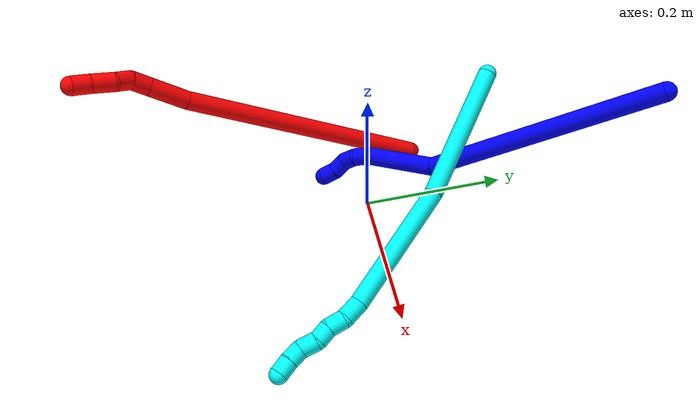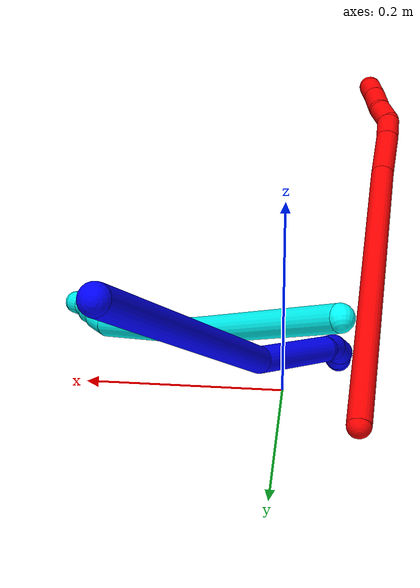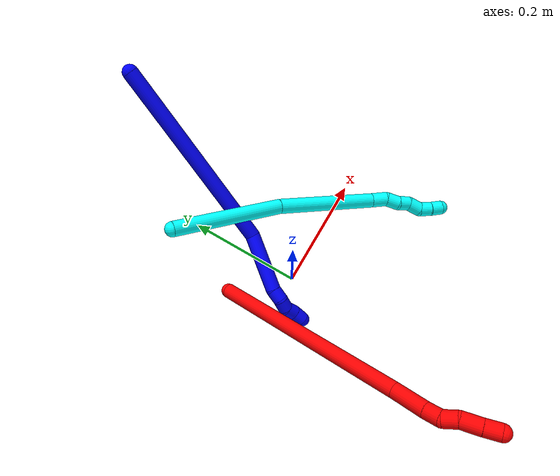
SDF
<sdf version="1.7">
 <world name="default">
  <plugin name="TubeGeneratorPlugin" filename="libtube_generator_plugin.so"/>
  <model name="photoneo_s_sensor">
   <static>1</static>
   <pose>0 0 2 1.57079 1.57079 3.14159</pose>
   <link name="link">
    <inertial><mass>0.1</mass></inertial>
    <sensor name="sensor" type="depth">
     <update_rate>30</update_rate>
     <camera>
      <horizontal_fov>1.22</horizontal_fov>
      <image><width>1920</width><height>1200</height><format>B8G8R8</format></image>
      <clip><near>0.1</near><far>4</far></clip>
      <depth_camera><output>points</output></depth_camera>
     </camera>
     <plugin name="camera_plugin" filename="libgazebo_ros_depth_camera.so">
      <baseline>0.2</baseline>
      <alwaysOn>1</alwaysOn>
      <updateRate>0.0</updateRate>
      <cameraName>camera_ir</cameraName>
      <imageTopicName>/camera/color/image_raw</imageTopicName>
      <cameraInfoTopicName>/camera/color/camera_info</cameraInfoTopicName>
      <depthImageTopicName>/camera/depth/image_raw</depthImageTopicName>
      <depthImageCameraInfoTopicName>/camera/depth/camera_info</depthImageCameraInfoTopicName>
      <pointCloudTopicName>/camera/depth/points</pointCloudTopicName>
      <frameName>fr_optical</frameName>
      <pointCloudCutoff>0.1</pointCloudCutoff>
      <pointCloudCutoffMax>2.0</pointCloudCutoffMax>
      <distortionK1>0</distortionK1>
      <distortionK2>0</distortionK2>
      <distortionK3>0</distortionK3>
      <distortionT1>0</distortionT1>
      <distortionT2>0</distortionT2>
      <CxPrime>0</CxPrime>
      <Cx>0</Cx>
      <Cy>0</Cy>
      <focalLength>0</focalLength>
      <hackBaseline>0</hackBaseline>
     </plugin>
    </sensor>
   </link>
  </model>
  <gravity>0 0 -9.8</gravity>
  <magnetic_field>6e-06 2.3e-05 -4.2e-05</magnetic_field>
  <atmosphere type="adiabatic"/>
  <physics name="default_physics" default="0" type="ode">
   <max_step_size>0.003</max_step_size>
   <real_time_factor>1</real_time_factor>
   <real_time_update_rate>1000</real_time_update_rate>
   <max_contacts>10000</max_contacts>
   <ode>
    <solver>
     <type>quick</type>
     <iters>100</iters>
     <sor>1.3</sor>
     <use_dynamic_moi_rescaling>0</use_dynamic_moi_rescaling>
    </solver>
    <constraints>
     <contact_max_correcting_vel>0</contact_max_correcting_vel>
     <contact_surface_layer>0.001</contact_surface_layer>
     <cfm>0</cfm>
     <erp>0.2</erp>
    </constraints>
   </ode>
  </physics>
  <scene><ambient>0.4 0.4 0.4 1</ambient><background>0.7 0.7 0.7 1</background><shadows>0</shadows></scene>
  <audio><device>default</device></audio>
  <spherical_coordinates>
   <surface_model>EARTH_WGS84</surface_model>
   <latitude_deg>0</latitude_deg>
   <longitude_deg>0</longitude_deg>
   <elevation>0</elevation>
   <heading_deg>0</heading_deg>
  </spherical_coordinates>
  <model name="bin">
   <static>1</static>
   <link name="bottom">
    <collision name="collision-bottom">
     <pose>0 0 -0.01 0 -0 0</pose>
     <geometry><box><size>0.8 0.6 0.02</size></box></geometry>
     <surface>
      <friction><ode><mu>100</mu><mu2>100</mu2></ode></friction>
      <contact><collide_bitmask>65535</collide_bitmask></contact>
     </surface>
    </collision>
   </link>
   <link name="west_wall">
    <collision name="collision-west_wall">
     <pose>-0.41 0 0.1 0 -0 0</pose>
     <geometry><box><size>0.02 0.6 0.2</size></box></geometry>
     <surface>
      <friction><ode><mu>100</mu><mu2>100</mu2></ode></friction>
      <contact><collide_bitmask>65535</collide_bitmask></contact>
     </surface>
    </collision>
   </link>
   <link name="east_wall">
    <collision name="collision-east_wall">
     <pose>0.41 0 0.1 0 -0 0</pose>
     <geometry><box><size>0.02 0.6 0.2</size></box></geometry>
     <surface>
      <friction><ode><mu>100</mu><mu2>100</mu2></ode></friction>
      <contact><collide_bitmask>65535</collide_bitmask></contact>
     </surface>
    </collision>
   </link>
   <link name="south_wall">
    <collision name="collision-south_wall">
     <pose>0 -0.31 0.1 0 -0 0</pose>
     <geometry><box><size>0.8 0.02 0.2</size></box></geometry>
     <surface>
      <friction><ode><mu>100</mu><mu2>100</mu2></ode></friction>
      <contact><collide_bitmask>65535</collide_bitmask></contact>
     </surface>
    </collision>
   </link>
   <link name="north_wall">
    <collision name="collision-north_wall">
     <pose>0 0.31 0.1 0 -0 0</pose>
     <geometry><box><size>0.8 0.02 0.2</size></box></geometry>
     <surface>
      <friction><ode><mu>100</mu><mu2>100</mu2></ode></friction>
      <contact><collide_bitmask>65535</collide_bitmask></contact>
     </surface>
    </collision>
   </link>
  </model>
  <model name="1">
   <static>0</static>
   <link name="1">
    <collision name="collision-cylinder-e_1_1_4">
     <pose>-0.039546 -0.052509 -0.146206 2.7968 -0.249267 -1.24738</pose>
     <geometry><cylinder><radius>0.0125</radius><length>0.320608</length></cylinder></geometry>
     <surface>
      <friction><ode><mu>1.16</mu><mu2>1.16</mu2><slip1>0</slip1><slip2>0</slip2></ode></friction>
      <contact><ode><kp>1e+06</kp><kd>1</kd><max_vel>0</max_vel><min_depth>0.001</min_depth></ode></contact>
     </surface>
    </collision>
    <visual name="visual-cylinder-e_1_1_4">
     <pose>-0.039546 -0.052509 -0.146206 2.7968 -0.249267 -1.24738</pose>
     <geometry><cylinder><radius>0.0125</radius><length>0.320608</length></cylinder></geometry>
     <material><ambient>0 0 1 1</ambient></material>
    </visual>
    <collision name="collision-cylinder-e_2_4_5">
     <pose>-0.076603 -0.135723 -0.330811 2.46705 0.050585 0.144033</pose>
     <geometry><cylinder><radius>0.0125</radius><length>0.098458</length></cylinder></geometry>
     <surface>
      <friction><ode><mu>1.16</mu><mu2>1.16</mu2><slip1>0</slip1><slip2>0</slip2></ode></friction>
      <contact><ode><kp>1e+06</kp><kd>1</kd><max_vel>0</max_vel><min_depth>0.001</min_depth></ode></contact>
     </surface>
    </collision>
    <visual name="visual-cylinder-e_2_4_5">
     <pose>-0.076603 -0.135723 -0.330811 2.46705 0.050585 0.144033</pose>
     <geometry><cylinder><radius>0.0125</radius><length>0.098458</length></cylinder></geometry>
     <material><ambient>0 0 1 1</ambient></material>
    </visual>
    <collision name="collision-cylinder-e_3_5_6">
     <pose>-0.07415 -0.170438 -0.378751 2.74387 -0.003566 -0.017695</pose>
     <geometry><cylinder><radius>0.0125</radius><length>0.020698</length></cylinder></geometry>
     <surface>
      <friction><ode><mu>1.16</mu><mu2>1.16</mu2><slip1>0</slip1><slip2>0</slip2></ode></friction>
      <contact><ode><kp>1e+06</kp><kd>1</kd><max_vel>0</max_vel><min_depth>0.001</min_depth></ode></contact>
     </surface>
    </collision>
    <visual name="visual-cylinder-e_3_5_6">
     <pose>-0.07415 -0.170438 -0.378751 2.74387 -0.003566 -0.017695</pose>
     <geometry><cylinder><radius>0.0125</radius><length>0.020698</length></cylinder></geometry>
     <material><ambient>0 0 1 1</ambient></material>
    </visual>
    <collision name="collision-cylinder-e_4_6_7">
     <pose>-0.077889 -0.178431 -0.396754 2.70154 -0.376826 -1.41196</pose>
     <geometry><cylinder><radius>0.0125</radius><length>0.020118</length></cylinder></geometry>
     <surface>
      <friction><ode><mu>1.16</mu><mu2>1.16</mu2><slip1>0</slip1><slip2>0</slip2></ode></friction>
      <contact><ode><kp>1e+06</kp><kd>1</kd><max_vel>0</max_vel><min_depth>0.001</min_depth></ode></contact>
     </surface>
    </collision>
    <visual name="visual-cylinder-e_4_6_7">
     <pose>-0.077889 -0.178431 -0.396754 2.70154 -0.376826 -1.41196</pose>
     <geometry><cylinder><radius>0.0125</radius><length>0.020118</length></cylinder></geometry>
     <material><ambient>0 0 1 1</ambient></material>
    </visual>
    <collision name="collision-cylinder-e_5_7_8">
     <pose>-0.085885 -0.181611 -0.414262 -3.05288 -0.441741 2.75128</pose>
     <geometry><cylinder><radius>0.0125</radius><length>0.020091</length></cylinder></geometry>
     <surface>
      <friction><ode><mu>1.16</mu><mu2>1.16</mu2><slip1>0</slip1><slip2>0</slip2></ode></friction>
      <contact><ode><kp>1e+06</kp><kd>1</kd><max_vel>0</max_vel><min_depth>0.001</min_depth></ode></contact>
     </surface>
    </collision>
    <visual name="visual-cylinder-e_5_7_8">
     <pose>-0.085885 -0.181611 -0.414262 -3.05288 -0.441741 2.75128</pose>
     <geometry><cylinder><radius>0.0125</radius><length>0.020091</length></cylinder></geometry>
     <material><ambient>0 0 1 1</ambient></material>
    </visual>
    <collision name="collision-cylinder-e_6_8_2">
     <pose>-0.092597 -0.182063 -0.432943 3.01191 -0.243853 -2.16701</pose>
     <geometry><cylinder><radius>0.0125</radius><length>0.020027</length></cylinder></geometry>
     <surface>
      <friction><ode><mu>1.16</mu><mu2>1.16</mu2><slip1>0</slip1><slip2>0</slip2></ode></friction>
      <contact><ode><kp>1e+06</kp><kd>1</kd><max_vel>0</max_vel><min_depth>0.001</min_depth></ode></contact>
     </surface>
    </collision>
    <visual name="visual-cylinder-e_6_8_2">
     <pose>-0.092597 -0.182063 -0.432943 3.01191 -0.243853 -2.16701</pose>
     <geometry><cylinder><radius>0.0125</radius><length>0.020027</length></cylinder></geometry>
     <material><ambient>0 0 1 1</ambient></material>
    </visual>
    <collision name="collision-sphere-2">
     <pose>-0.095015 -0.18332 -0.442578 0 -0 0</pose>
     <geometry><sphere><radius>0.0125</radius></sphere></geometry>
     <surface>
      <friction><ode><mu>1.16</mu><mu2>1.16</mu2><slip1>0</slip1><slip2>0</slip2></ode></friction>
      <contact><ode><kp>1e+06</kp><kd>1</kd><max_vel>0</max_vel><min_depth>0.001</min_depth></ode></contact>
     </surface>
    </collision>
    <visual name="visual-sphere-2">
     <pose>-0.095015 -0.18332 -0.442578 0 -0 0</pose>
     <geometry><sphere><radius>0.0125</radius></sphere></geometry>
     <material><ambient>0 0 1 1</ambient></material>
    </visual>
    <collision name="collision-sphere-4">
     <pose>-0.079092 -0.105017 -0.292413 0 -0 0</pose>
     <geometry><sphere><radius>0.0125</radius></sphere></geometry>
     <surface>
      <friction><ode><mu>1.16</mu><mu2>1.16</mu2><slip1>0</slip1><slip2>0</slip2></ode></friction>
      <contact><ode><kp>1e+06</kp><kd>1</kd><max_vel>0</max_vel><min_depth>0.001</min_depth></ode></contact>
     </surface>
    </collision>
    <visual name="visual-sphere-4">
     <pose>-0.079092 -0.105017 -0.292413 0 -0 0</pose>
     <geometry><sphere><radius>0.0125</radius></sphere></geometry>
     <material><ambient>0 0 1 1</ambient></material>
    </visual>
    <collision name="collision-sphere-1">
     <geometry><sphere><radius>0.0125</radius></sphere></geometry>
     <surface>
      <friction><ode><mu>1.16</mu><mu2>1.16</mu2><slip1>0</slip1><slip2>0</slip2></ode></friction>
      <contact><ode><kp>1e+06</kp><kd>1</kd><max_vel>0</max_vel><min_depth>0.001</min_depth></ode></contact>
     </surface>
    </collision>
    <visual name="visual-sphere-1">
     <geometry><sphere><radius>0.0125</radius></sphere></geometry>
     <material><ambient>0 0 1 1</ambient></material>
    </visual>
    <collision name="collision-sphere-8">
     <pose>-0.090179 -0.180806 -0.423307 0 -0 0</pose>
     <geometry><sphere><radius>0.0125</radius></sphere></geometry>
     <surface>
      <friction><ode><mu>1.16</mu><mu2>1.16</mu2><slip1>0</slip1><slip2>0</slip2></ode></friction>
      <contact><ode><kp>1e+06</kp><kd>1</kd><max_vel>0</max_vel><min_depth>0.001</min_depth></ode></contact>
     </surface>
    </collision>
    <visual name="visual-sphere-8">
     <pose>-0.090179 -0.180806 -0.423307 0 -0 0</pose>
     <geometry><sphere><radius>0.0125</radius></sphere></geometry>
     <material><ambient>0 0 1 1</ambient></material>
    </visual>
    <collision name="collision-sphere-5">
     <pose>-0.074113 -0.16643 -0.369209 0 -0 0</pose>
     <geometry><sphere><radius>0.0125</radius></sphere></geometry>
     <surface>
      <friction><ode><mu>1.16</mu><mu2>1.16</mu2><slip1>0</slip1><slip2>0</slip2></ode></friction>
      <contact><ode><kp>1e+06</kp><kd>1</kd><max_vel>0</max_vel><min_depth>0.001</min_depth></ode></contact>
     </surface>
    </collision>
    <visual name="visual-sphere-5">
     <pose>-0.074113 -0.16643 -0.369209 0 -0 0</pose>
     <geometry><sphere><radius>0.0125</radius></sphere></geometry>
     <material><ambient>0 0 1 1</ambient></material>
    </visual>
    <collision name="collision-sphere-6">
     <pose>-0.074187 -0.174447 -0.388292 0 -0 0</pose>
     <geometry><sphere><radius>0.0125</radius></sphere></geometry>
     <surface>
      <friction><ode><mu>1.16</mu><mu2>1.16</mu2><slip1>0</slip1><slip2>0</slip2></ode></friction>
      <contact><ode><kp>1e+06</kp><kd>1</kd><max_vel>0</max_vel><min_depth>0.001</min_depth></ode></contact>
     </surface>
    </collision>
    <visual name="visual-sphere-6">
     <pose>-0.074187 -0.174447 -0.388292 0 -0 0</pose>
     <geometry><sphere><radius>0.0125</radius></sphere></geometry>
     <material><ambient>0 0 1 1</ambient></material>
    </visual>
    <collision name="collision-sphere-7">
     <pose>-0.08159 -0.182415 -0.405216 0 -0 0</pose>
     <geometry><sphere><radius>0.0125</radius></sphere></geometry>
     <surface>
      <friction><ode><mu>1.16</mu><mu2>1.16</mu2><slip1>0</slip1><slip2>0</slip2></ode></friction>
      <contact><ode><kp>1e+06</kp><kd>1</kd><max_vel>0</max_vel><min_depth>0.001</min_depth></ode></contact>
     </surface>
    </collision>
    <visual name="visual-sphere-7">
     <pose>-0.08159 -0.182415 -0.405216 0 -0 0</pose>
     <geometry><sphere><radius>0.0125</radius></sphere></geometry>
     <material><ambient>0 0 1 1</ambient></material>
    </visual>
    <inertial>
     <pose>-0.053805 -0.08922 -0.224521 0 -0 0</pose>
     <mass>0.5</mass>
     <inertia>
      <ixx>-0.001601</ixx>
      <ixy>0</ixy>
      <ixz>0</ixz>
      <iyy>-0.00321</iyy>
      <iyz>0</iyz>
      <izz>0.0016</izz>
     </inertia>
    </inertial>
   </link>
   <pose>0.10767 0.345203 0.243971 0.285257 -1.26908 -1.84006</pose>
  </model>
  <model name="2">
   <static>0</static>
   <link name="2">
    <collision name="collision-cylinder-e_1_1_4">
     <pose>-0.004027 -0.036975 0.167886 0.21678 -0.023418 -0.002548</pose>
     <geometry><cylinder><radius>0.0125</radius><length>0.343913</length></cylinder></geometry>
     <surface>
      <friction><ode><mu>1.16</mu><mu2>1.16</mu2><slip1>0</slip1><slip2>0</slip2></ode></friction>
      <contact><ode><kp>1e+06</kp><kd>1</kd><max_vel>0</max_vel><min_depth>0.001</min_depth></ode></contact>
     </surface>
    </collision>
    <visual name="visual-cylinder-e_1_1_4">
     <pose>-0.004027 -0.036975 0.167886 0.21678 -0.023418 -0.002548</pose>
     <geometry><cylinder><radius>0.0125</radius><length>0.343913</length></cylinder></geometry>
     <material><ambient>1 0 0 1</ambient></material>
    </visual>
    <collision name="collision-cylinder-e_2_4_5">
     <pose>-0.010152 -0.082834 0.361234 0.335688 -0.077672 -0.013167</pose>
     <geometry><cylinder><radius>0.0125</radius><length>0.054098</length></cylinder></geometry>
     <surface>
      <friction><ode><mu>1.16</mu><mu2>1.16</mu2><slip1>0</slip1><slip2>0</slip2></ode></friction>
      <contact><ode><kp>1e+06</kp><kd>1</kd><max_vel>0</max_vel><min_depth>0.001</min_depth></ode></contact>
     </surface>
    </collision>
    <visual name="visual-cylinder-e_2_4_5">
     <pose>-0.010152 -0.082834 0.361234 0.335688 -0.077672 -0.013167</pose>
     <geometry><cylinder><radius>0.0125</radius><length>0.054098</length></cylinder></geometry>
     <material><ambient>1 0 0 1</ambient></material>
    </visual>
    <collision name="collision-cylinder-e_3_5_6">
     <pose>-0.014194 -0.095716 0.39818 0.335066 -0.158436 -0.026849</pose>
     <geometry><cylinder><radius>0.0125</radius><length>0.024628</length></cylinder></geometry>
     <surface>
      <friction><ode><mu>1.16</mu><mu2>1.16</mu2><slip1>0</slip1><slip2>0</slip2></ode></friction>
      <contact><ode><kp>1e+06</kp><kd>1</kd><max_vel>0</max_vel><min_depth>0.001</min_depth></ode></contact>
     </surface>
    </collision>
    <visual name="visual-cylinder-e_3_5_6">
     <pose>-0.014194 -0.095716 0.39818 0.335066 -0.158436 -0.026849</pose>
     <geometry><cylinder><radius>0.0125</radius><length>0.024628</length></cylinder></geometry>
     <material><ambient>1 0 0 1</ambient></material>
    </visual>
    <collision name="collision-cylinder-e_4_6_7">
     <pose>-0.020724 -0.098445 0.420129 -0.120766 -0.410439 0.025167</pose>
     <geometry><cylinder><radius>0.0125</radius><length>0.022995</length></cylinder></geometry>
     <surface>
      <friction><ode><mu>1.16</mu><mu2>1.16</mu2><slip1>0</slip1><slip2>0</slip2></ode></friction>
      <contact><ode><kp>1e+06</kp><kd>1</kd><max_vel>0</max_vel><min_depth>0.001</min_depth></ode></contact>
     </surface>
    </collision>
    <visual name="visual-cylinder-e_4_6_7">
     <pose>-0.020724 -0.098445 0.420129 -0.120766 -0.410439 0.025167</pose>
     <geometry><cylinder><radius>0.0125</radius><length>0.022995</length></cylinder></geometry>
     <material><ambient>1 0 0 1</ambient></material>
    </visual>
    <collision name="collision-cylinder-e_5_7_8">
     <pose>-0.026755 -0.095896 0.445593 -0.085071 -0.095548 0.00407</pose>
     <geometry><cylinder><radius>0.0125</radius><length>0.030242</length></cylinder></geometry>
     <surface>
      <friction><ode><mu>1.16</mu><mu2>1.16</mu2><slip1>0</slip1><slip2>0</slip2></ode></friction>
      <contact><ode><kp>1e+06</kp><kd>1</kd><max_vel>0</max_vel><min_depth>0.001</min_depth></ode></contact>
     </surface>
    </collision>
    <visual name="visual-cylinder-e_5_7_8">
     <pose>-0.026755 -0.095896 0.445593 -0.085071 -0.095548 0.00407</pose>
     <geometry><cylinder><radius>0.0125</radius><length>0.030242</length></cylinder></geometry>
     <material><ambient>1 0 0 1</ambient></material>
    </visual>
    <collision name="collision-cylinder-e_6_8_2">
     <pose>-0.029774 -0.093194 0.472464 -0.119271 -0.131108 0.007839</pose>
     <geometry><cylinder><radius>0.0125</radius><length>0.024123</length></cylinder></geometry>
     <surface>
      <friction><ode><mu>1.16</mu><mu2>1.16</mu2><slip1>0</slip1><slip2>0</slip2></ode></friction>
      <contact><ode><kp>1e+06</kp><kd>1</kd><max_vel>0</max_vel><min_depth>0.001</min_depth></ode></contact>
     </surface>
    </collision>
    <visual name="visual-cylinder-e_6_8_2">
     <pose>-0.029774 -0.093194 0.472464 -0.119271 -0.131108 0.007839</pose>
     <geometry><cylinder><radius>0.0125</radius><length>0.024123</length></cylinder></geometry>
     <material><ambient>1 0 0 1</ambient></material>
    </visual>
    <collision name="collision-sphere-2">
     <pose>-0.031351 -0.091771 0.484337 0 -0 0</pose>
     <geometry><sphere><radius>0.0125</radius></sphere></geometry>
     <surface>
      <friction><ode><mu>1.16</mu><mu2>1.16</mu2><slip1>0</slip1><slip2>0</slip2></ode></friction>
      <contact><ode><kp>1e+06</kp><kd>1</kd><max_vel>0</max_vel><min_depth>0.001</min_depth></ode></contact>
     </surface>
    </collision>
    <visual name="visual-sphere-2">
     <pose>-0.031351 -0.091771 0.484337 0 -0 0</pose>
     <geometry><sphere><radius>0.0125</radius></sphere></geometry>
     <material><ambient>1 0 0 1</ambient></material>
    </visual>
    <collision name="collision-sphere-4">
     <pose>-0.008053 -0.073951 0.335772 0 -0 0</pose>
     <geometry><sphere><radius>0.0125</radius></sphere></geometry>
     <surface>
      <friction><ode><mu>1.16</mu><mu2>1.16</mu2><slip1>0</slip1><slip2>0</slip2></ode></friction>
      <contact><ode><kp>1e+06</kp><kd>1</kd><max_vel>0</max_vel><min_depth>0.001</min_depth></ode></contact>
     </surface>
    </collision>
    <visual name="visual-sphere-4">
     <pose>-0.008053 -0.073951 0.335772 0 -0 0</pose>
     <geometry><sphere><radius>0.0125</radius></sphere></geometry>
     <material><ambient>1 0 0 1</ambient></material>
    </visual>
    <collision name="collision-sphere-1">
     <geometry><sphere><radius>0.0125</radius></sphere></geometry>
     <surface>
      <friction><ode><mu>1.16</mu><mu2>1.16</mu2><slip1>0</slip1><slip2>0</slip2></ode></friction>
      <contact><ode><kp>1e+06</kp><kd>1</kd><max_vel>0</max_vel><min_depth>0.001</min_depth></ode></contact>
     </surface>
    </collision>
    <visual name="visual-sphere-1">
     <geometry><sphere><radius>0.0125</radius></sphere></geometry>
     <material><ambient>1 0 0 1</ambient></material>
    </visual>
    <collision name="collision-sphere-8">
     <pose>-0.028197 -0.094617 0.460591 0 -0 0</pose>
     <geometry><sphere><radius>0.0125</radius></sphere></geometry>
     <surface>
      <friction><ode><mu>1.16</mu><mu2>1.16</mu2><slip1>0</slip1><slip2>0</slip2></ode></friction>
      <contact><ode><kp>1e+06</kp><kd>1</kd><max_vel>0</max_vel><min_depth>0.001</min_depth></ode></contact>
     </surface>
    </collision>
    <visual name="visual-sphere-8">
     <pose>-0.028197 -0.094617 0.460591 0 -0 0</pose>
     <geometry><sphere><radius>0.0125</radius></sphere></geometry>
     <material><ambient>1 0 0 1</ambient></material>
    </visual>
    <collision name="collision-sphere-5">
     <pose>-0.012251 -0.091718 0.386696 0 -0 0</pose>
     <geometry><sphere><radius>0.0125</radius></sphere></geometry>
     <surface>
      <friction><ode><mu>1.16</mu><mu2>1.16</mu2><slip1>0</slip1><slip2>0</slip2></ode></friction>
      <contact><ode><kp>1e+06</kp><kd>1</kd><max_vel>0</max_vel><min_depth>0.001</min_depth></ode></contact>
     </surface>
    </collision>
    <visual name="visual-sphere-5">
     <pose>-0.012251 -0.091718 0.386696 0 -0 0</pose>
     <geometry><sphere><radius>0.0125</radius></sphere></geometry>
     <material><ambient>1 0 0 1</ambient></material>
    </visual>
    <collision name="collision-sphere-6">
     <pose>-0.016137 -0.099715 0.409663 0 -0 0</pose>
     <geometry><sphere><radius>0.0125</radius></sphere></geometry>
     <surface>
      <friction><ode><mu>1.16</mu><mu2>1.16</mu2><slip1>0</slip1><slip2>0</slip2></ode></friction>
      <contact><ode><kp>1e+06</kp><kd>1</kd><max_vel>0</max_vel><min_depth>0.001</min_depth></ode></contact>
     </surface>
    </collision>
    <visual name="visual-sphere-6">
     <pose>-0.016137 -0.099715 0.409663 0 -0 0</pose>
     <geometry><sphere><radius>0.0125</radius></sphere></geometry>
     <material><ambient>1 0 0 1</ambient></material>
    </visual>
    <collision name="collision-sphere-7">
     <pose>-0.025312 -0.097175 0.430595 0 -0 0</pose>
     <geometry><sphere><radius>0.0125</radius></sphere></geometry>
     <surface>
      <friction><ode><mu>1.16</mu><mu2>1.16</mu2><slip1>0</slip1><slip2>0</slip2></ode></friction>
      <contact><ode><kp>1e+06</kp><kd>1</kd><max_vel>0</max_vel><min_depth>0.001</min_depth></ode></contact>
     </surface>
    </collision>
    <visual name="visual-sphere-7">
     <pose>-0.025312 -0.097175 0.430595 0 -0 0</pose>
     <geometry><sphere><radius>0.0125</radius></sphere></geometry>
     <material><ambient>1 0 0 1</ambient></material>
    </visual>
    <inertial>
     <pose>-0.008575 -0.053934 0.243241 0 -0 0</pose>
     <mass>0.5</mass>
     <inertia>
      <ixx>0.003416</ixx>
      <ixy>0</ixy>
      <ixz>0</ixz>
      <iyy>0.003332</iyy>
      <iyz>0</iyz>
      <izz>0.000857</izz>
     </inertia>
    </inertial>
   </link>
   <pose>-0.076444 0.084541 0.011498 -1.21857 0.659923 -2.85466</pose>
  </model>
  <model name="3">
   <static>0</static>
   <link name="3">
    <collision name="collision-cylinder-e_1_1_4">
     <pose>0.059371 -0.061812 0.037698 1.02315 0.686843 0.396255</pose>
     <geometry><cylinder><radius>0.0125</radius><length>0.187262</length></cylinder></geometry>
     <surface>
      <friction><ode><mu>1.16</mu><mu2>1.16</mu2><slip1>0</slip1><slip2>0</slip2></ode></friction>
      <contact><ode><kp>1e+06</kp><kd>1</kd><max_vel>0</max_vel><min_depth>0.001</min_depth></ode></contact>
     </surface>
    </collision>
    <visual name="visual-cylinder-e_1_1_4">
     <pose>0.059371 -0.061812 0.037698 1.02315 0.686843 0.396255</pose>
     <geometry><cylinder><radius>0.0125</radius><length>0.187262</length></cylinder></geometry>
     <material><ambient>0.003922 1 0.996078 1</ambient></material>
    </visual>
    <collision name="collision-cylinder-e_2_4_5">
     <pose>0.16387 -0.18413 0.120463 0.930596 0.539051 0.27563</pose>
     <geometry><cylinder><radius>0.0125</radius><length>0.175825</length></cylinder></geometry>
     <surface>
      <friction><ode><mu>1.16</mu><mu2>1.16</mu2><slip1>0</slip1><slip2>0</slip2></ode></friction>
      <contact><ode><kp>1e+06</kp><kd>1</kd><max_vel>0</max_vel><min_depth>0.001</min_depth></ode></contact>
     </surface>
    </collision>
    <visual name="visual-cylinder-e_2_4_5">
     <pose>0.16387 -0.18413 0.120463 0.930596 0.539051 0.27563</pose>
     <geometry><cylinder><radius>0.0125</radius><length>0.175825</length></cylinder></geometry>
     <material><ambient>0.003922 1 0.996078 1</ambient></material>
    </visual>
    <collision name="collision-cylinder-e_3_5_6">
     <pose>0.215519 -0.252077 0.175438 0.644217 0.484526 0.164569</pose>
     <geometry><cylinder><radius>0.0125</radius><length>0.028003</length></cylinder></geometry>
     <surface>
      <friction><ode><mu>1.16</mu><mu2>1.16</mu2><slip1>0</slip1><slip2>0</slip2></ode></friction>
      <contact><ode><kp>1e+06</kp><kd>1</kd><max_vel>0</max_vel><min_depth>0.001</min_depth></ode></contact>
     </surface>
    </collision>
    <visual name="visual-cylinder-e_3_5_6">
     <pose>0.215519 -0.252077 0.175438 0.644217 0.484526 0.164569</pose>
     <geometry><cylinder><radius>0.0125</radius><length>0.028003</length></cylinder></geometry>
     <material><ambient>0.003922 1 0.996078 1</ambient></material>
    </visual>
    <collision name="collision-cylinder-e_4_6_7">
     <pose>0.223096 -0.267791 0.193278 0.806301 0.091745 0.039153</pose>
     <geometry><cylinder><radius>0.0125</radius><length>0.023021</length></cylinder></geometry>
     <surface>
      <friction><ode><mu>1.16</mu><mu2>1.16</mu2><slip1>0</slip1><slip2>0</slip2></ode></friction>
      <contact><ode><kp>1e+06</kp><kd>1</kd><max_vel>0</max_vel><min_depth>0.001</min_depth></ode></contact>
     </surface>
    </collision>
    <visual name="visual-cylinder-e_4_6_7">
     <pose>0.223096 -0.267791 0.193278 0.806301 0.091745 0.039153</pose>
     <geometry><cylinder><radius>0.0125</radius><length>0.023021</length></cylinder></geometry>
     <material><ambient>0.003922 1 0.996078 1</ambient></material>
    </visual>
    <collision name="collision-cylinder-e_5_7_8">
     <pose>0.228568 -0.283172 0.207144 0.875448 0.445176 0.211067</pose>
     <geometry><cylinder><radius>0.0125</radius><length>0.020516</length></cylinder></geometry>
     <surface>
      <friction><ode><mu>1.16</mu><mu2>1.16</mu2><slip1>0</slip1><slip2>0</slip2></ode></friction>
      <contact><ode><kp>1e+06</kp><kd>1</kd><max_vel>0</max_vel><min_depth>0.001</min_depth></ode></contact>
     </surface>
    </collision>
    <visual name="visual-cylinder-e_5_7_8">
     <pose>0.228568 -0.283172 0.207144 0.875448 0.445176 0.211067</pose>
     <geometry><cylinder><radius>0.0125</radius><length>0.020516</length></cylinder></geometry>
     <material><ambient>0.003922 1 0.996078 1</ambient></material>
    </visual>
    <collision name="collision-cylinder-e_6_8_9">
     <pose>0.232775 -0.29972 0.220537 0.901829 -0.017483 -0.008465</pose>
     <geometry><cylinder><radius>0.0125</radius><length>0.024068</length></cylinder></geometry>
     <surface>
      <friction><ode><mu>1.16</mu><mu2>1.16</mu2><slip1>0</slip1><slip2>0</slip2></ode></friction>
      <contact><ode><kp>1e+06</kp><kd>1</kd><max_vel>0</max_vel><min_depth>0.001</min_depth></ode></contact>
     </surface>
    </collision>
    <visual name="visual-cylinder-e_6_8_9">
     <pose>0.232775 -0.29972 0.220537 0.901829 -0.017483 -0.008465</pose>
     <geometry><cylinder><radius>0.0125</radius><length>0.024068</length></cylinder></geometry>
     <material><ambient>0.003922 1 0.996078 1</ambient></material>
    </visual>
    <collision name="collision-cylinder-e_7_9_10">
     <pose>0.237059 -0.315221 0.235105 0.706317 0.448509 0.16776</pose>
     <geometry><cylinder><radius>0.0125</radius><length>0.020733</length></cylinder></geometry>
     <surface>
      <friction><ode><mu>1.16</mu><mu2>1.16</mu2><slip1>0</slip1><slip2>0</slip2></ode></friction>
      <contact><ode><kp>1e+06</kp><kd>1</kd><max_vel>0</max_vel><min_depth>0.001</min_depth></ode></contact>
     </surface>
    </collision>
    <visual name="visual-cylinder-e_7_9_10">
     <pose>0.237059 -0.315221 0.235105 0.706317 0.448509 0.16776</pose>
     <geometry><cylinder><radius>0.0125</radius><length>0.020733</length></cylinder></geometry>
     <material><ambient>0.003922 1 0.996078 1</ambient></material>
    </visual>
    <collision name="collision-cylinder-e_8_10_2">
     <pose>0.246936 -0.327345 0.248544 0.763534 0.550566 0.225825</pose>
     <geometry><cylinder><radius>0.0125</radius><length>0.020571</length></cylinder></geometry>
     <surface>
      <friction><ode><mu>1.16</mu><mu2>1.16</mu2><slip1>0</slip1><slip2>0</slip2></ode></friction>
      <contact><ode><kp>1e+06</kp><kd>1</kd><max_vel>0</max_vel><min_depth>0.001</min_depth></ode></contact>
     </surface>
    </collision>
    <visual name="visual-cylinder-e_8_10_2">
     <pose>0.246936 -0.327345 0.248544 0.763534 0.550566 0.225825</pose>
     <geometry><cylinder><radius>0.0125</radius><length>0.020571</length></cylinder></geometry>
     <material><ambient>0.003922 1 0.996078 1</ambient></material>
    </visual>
    <collision name="collision-sphere-2">
     <pose>0.252317 -0.333407 0.254877 0 -0 0</pose>
     <geometry><sphere><radius>0.0125</radius></sphere></geometry>
     <surface>
      <friction><ode><mu>1.16</mu><mu2>1.16</mu2><slip1>0</slip1><slip2>0</slip2></ode></friction>
      <contact><ode><kp>1e+06</kp><kd>1</kd><max_vel>0</max_vel><min_depth>0.001</min_depth></ode></contact>
     </surface>
    </collision>
    <visual name="visual-sphere-2">
     <pose>0.252317 -0.333407 0.254877 0 -0 0</pose>
     <geometry><sphere><radius>0.0125</radius></sphere></geometry>
     <material><ambient>0.003922 1 0.996078 1</ambient></material>
    </visual>
    <collision name="collision-sphere-10">
     <pose>0.241555 -0.321284 0.242212 0 -0 0</pose>
     <geometry><sphere><radius>0.0125</radius></sphere></geometry>
     <surface>
      <friction><ode><mu>1.16</mu><mu2>1.16</mu2><slip1>0</slip1><slip2>0</slip2></ode></friction>
      <contact><ode><kp>1e+06</kp><kd>1</kd><max_vel>0</max_vel><min_depth>0.001</min_depth></ode></contact>
     </surface>
    </collision>
    <visual name="visual-sphere-10">
     <pose>0.241555 -0.321284 0.242212 0 -0 0</pose>
     <geometry><sphere><radius>0.0125</radius></sphere></geometry>
     <material><ambient>0.003922 1 0.996078 1</ambient></material>
    </visual>
    <collision name="collision-sphere-9">
     <pose>0.232564 -0.309158 0.227999 0 -0 0</pose>
     <geometry><sphere><radius>0.0125</radius></sphere></geometry>
     <surface>
      <friction><ode><mu>1.16</mu><mu2>1.16</mu2><slip1>0</slip1><slip2>0</slip2></ode></friction>
      <contact><ode><kp>1e+06</kp><kd>1</kd><max_vel>0</max_vel><min_depth>0.001</min_depth></ode></contact>
     </surface>
    </collision>
    <visual name="visual-sphere-9">
     <pose>0.232564 -0.309158 0.227999 0 -0 0</pose>
     <geometry><sphere><radius>0.0125</radius></sphere></geometry>
     <material><ambient>0.003922 1 0.996078 1</ambient></material>
    </visual>
    <collision name="collision-sphere-4">
     <pose>0.118743 -0.123624 0.075395 0 -0 0</pose>
     <geometry><sphere><radius>0.0125</radius></sphere></geometry>
     <surface>
      <friction><ode><mu>1.16</mu><mu2>1.16</mu2><slip1>0</slip1><slip2>0</slip2></ode></friction>
      <contact><ode><kp>1e+06</kp><kd>1</kd><max_vel>0</max_vel><min_depth>0.001</min_depth></ode></contact>
     </surface>
    </collision>
    <visual name="visual-sphere-4">
     <pose>0.118743 -0.123624 0.075395 0 -0 0</pose>
     <geometry><sphere><radius>0.0125</radius></sphere></geometry>
     <material><ambient>0.003922 1 0.996078 1</ambient></material>
    </visual>
    <collision name="collision-sphere-1">
     <geometry><sphere><radius>0.0125</radius></sphere></geometry>
     <surface>
      <friction><ode><mu>1.16</mu><mu2>1.16</mu2><slip1>0</slip1><slip2>0</slip2></ode></friction>
      <contact><ode><kp>1e+06</kp><kd>1</kd><max_vel>0</max_vel><min_depth>0.001</min_depth></ode></contact>
     </surface>
    </collision>
    <visual name="visual-sphere-1">
     <geometry><sphere><radius>0.0125</radius></sphere></geometry>
     <material><ambient>0.003922 1 0.996078 1</ambient></material>
    </visual>
    <collision name="collision-sphere-8">
     <pose>0.232985 -0.290281 0.213075 0 -0 0</pose>
     <geometry><sphere><radius>0.0125</radius></sphere></geometry>
     <surface>
      <friction><ode><mu>1.16</mu><mu2>1.16</mu2><slip1>0</slip1><slip2>0</slip2></ode></friction>
      <contact><ode><kp>1e+06</kp><kd>1</kd><max_vel>0</max_vel><min_depth>0.001</min_depth></ode></contact>
     </surface>
    </collision>
    <visual name="visual-sphere-8">
     <pose>0.232985 -0.290281 0.213075 0 -0 0</pose>
     <geometry><sphere><radius>0.0125</radius></sphere></geometry>
     <material><ambient>0.003922 1 0.996078 1</ambient></material>
    </visual>
    <collision name="collision-sphere-5">
     <pose>0.208998 -0.244636 0.165532 0 -0 0</pose>
     <geometry><sphere><radius>0.0125</radius></sphere></geometry>
     <surface>
      <friction><ode><mu>1.16</mu><mu2>1.16</mu2><slip1>0</slip1><slip2>0</slip2></ode></friction>
      <contact><ode><kp>1e+06</kp><kd>1</kd><max_vel>0</max_vel><min_depth>0.001</min_depth></ode></contact>
     </surface>
    </collision>
    <visual name="visual-sphere-5">
     <pose>0.208998 -0.244636 0.165532 0 -0 0</pose>
     <geometry><sphere><radius>0.0125</radius></sphere></geometry>
     <material><ambient>0.003922 1 0.996078 1</ambient></material>
    </visual>
    <collision name="collision-sphere-6">
     <pose>0.222041 -0.259518 0.185344 0 -0 0</pose>
     <geometry><sphere><radius>0.0125</radius></sphere></geometry>
     <surface>
      <friction><ode><mu>1.16</mu><mu2>1.16</mu2><slip1>0</slip1><slip2>0</slip2></ode></friction>
      <contact><ode><kp>1e+06</kp><kd>1</kd><max_vel>0</max_vel><min_depth>0.001</min_depth></ode></contact>
     </surface>
    </collision>
    <visual name="visual-sphere-6">
     <pose>0.222041 -0.259518 0.185344 0 -0 0</pose>
     <geometry><sphere><radius>0.0125</radius></sphere></geometry>
     <material><ambient>0.003922 1 0.996078 1</ambient></material>
    </visual>
    <collision name="collision-sphere-7">
     <pose>0.22415 -0.276063 0.201212 0 -0 0</pose>
     <geometry><sphere><radius>0.0125</radius></sphere></geometry>
     <surface>
      <friction><ode><mu>1.16</mu><mu2>1.16</mu2><slip1>0</slip1><slip2>0</slip2></ode></friction>
      <contact><ode><kp>1e+06</kp><kd>1</kd><max_vel>0</max_vel><min_depth>0.001</min_depth></ode></contact>
     </surface>
    </collision>
    <visual name="visual-sphere-7">
     <pose>0.22415 -0.276063 0.201212 0 -0 0</pose>
     <geometry><sphere><radius>0.0125</radius></sphere></geometry>
     <material><ambient>0.003922 1 0.996078 1</ambient></material>
    </visual>
    <inertial>
     <pose>0.142776 -0.166932 0.114294 0 -0 0</pose>
     <mass>0.5</mass>
     <inertia>
      <ixx>0.00108</ixx>
      <ixy>0</ixy>
      <ixz>0</ixz>
      <iyy>0.000955</iyy>
      <iyz>0</iyz>
      <izz>0.000119</izz>
     </inertia>
    </inertial>
   </link>
   <pose>-0.054924 0.181279 0.163896 0.978235 0.070776 0.167005</pose>
  </model>
 </world>
</sdf>
